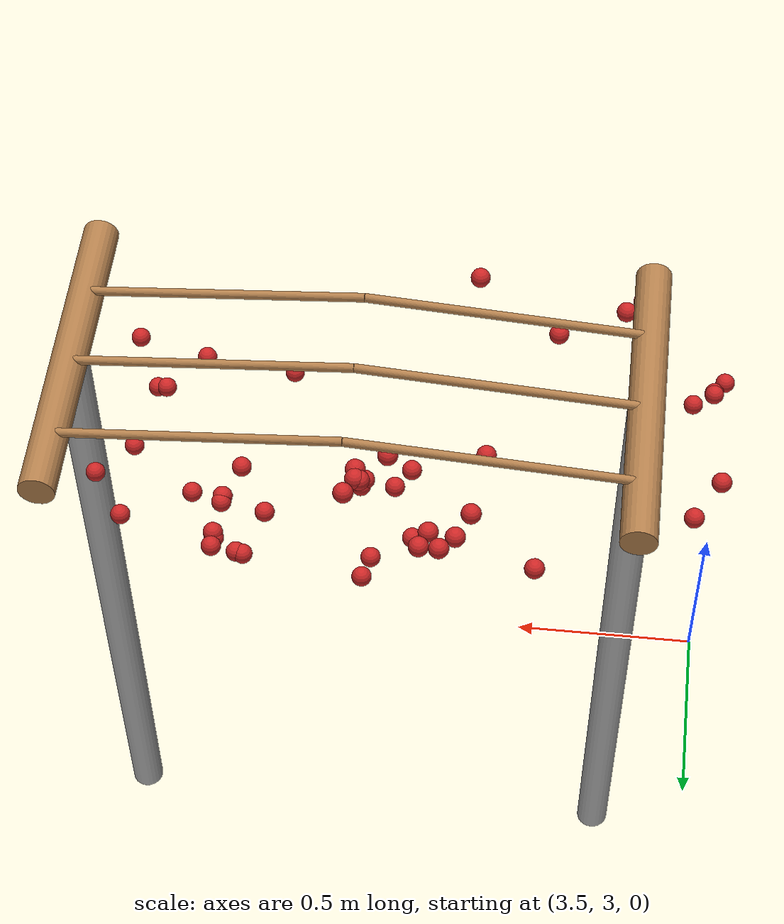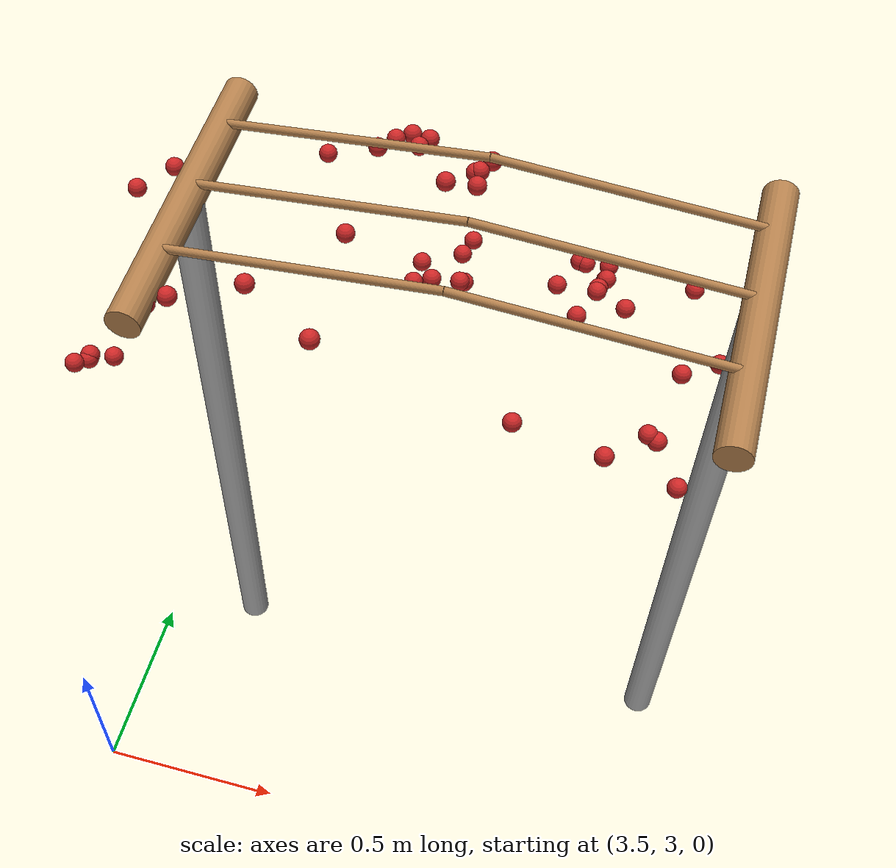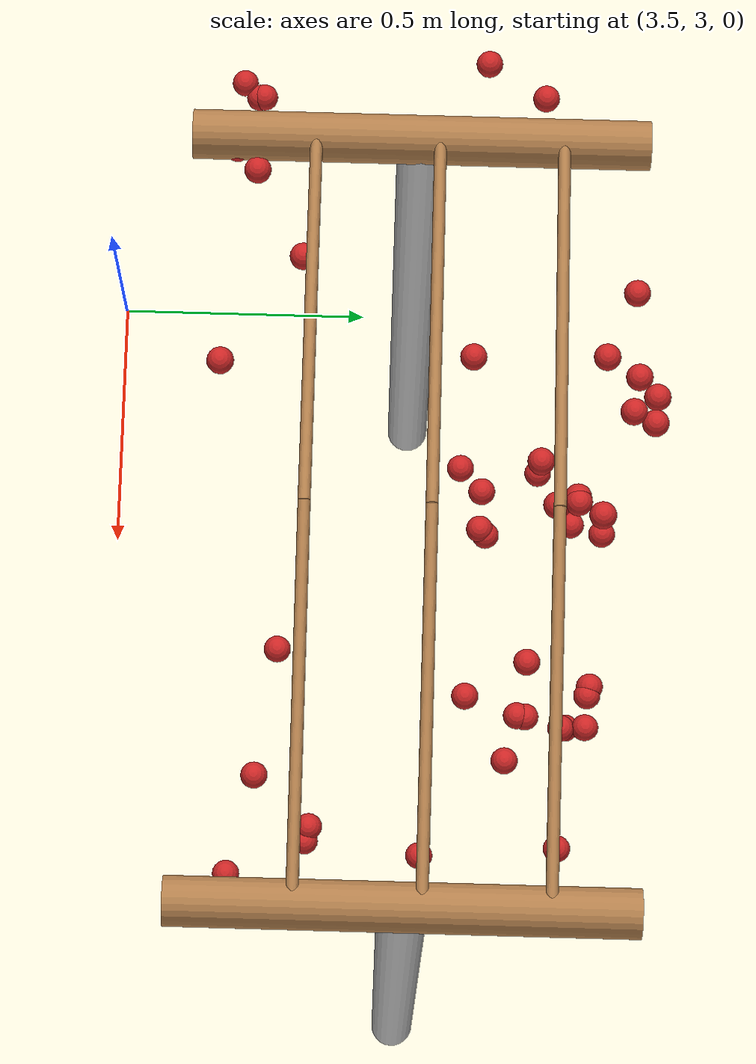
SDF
<sdf version="1.4">
 <model name="pergola">
  <include><name>tree_22</name><pose>3.75 3.6 0 0 0 0</pose><uri>model://tree_trunk</uri></include>
  <include><name>tree_28</name><pose>5.0 3.6 0 0 0 0</pose><uri>model://tree_trunk</uri></include>
  <link name="baseBranch_22">
   <pose>3.75 3.6 1.8 1.5707963267948966 0 0</pose>
   <collision name="collision">
    <geometry><cylinder><radius>0.04</radius><length>0.74</length></cylinder></geometry>
   </collision>
   <visual name="visual">
    <geometry><cylinder><radius>0.04</radius><length>0.74</length></cylinder></geometry>
    <material><script><name>Gazebo/WoodFloor</name></script></material>
   </visual>
   <inertial>
    <mass>10</mass>
    <inertia>
     <ixx>0.4603333333333333</ixx>
     <ixy>0.0</ixy>
     <ixz>0.0</ixz>
     <iyy>0.4603333333333333</iyy>
     <iyz>0.0</iyz>
     <izz>0.008</izz>
    </inertia>
   </inertial>
  </link>
  <link name="baseBranch_28">
   <pose>5.0 3.6 1.8 1.5707963267948966 0 0</pose>
   <collision name="collision">
    <geometry><cylinder><radius>0.04</radius><length>0.74</length></cylinder></geometry>
   </collision>
   <visual name="visual">
    <geometry><cylinder><radius>0.04</radius><length>0.74</length></cylinder></geometry>
    <material><script><name>Gazebo/WoodFloor</name></script></material>
   </visual>
   <inertial>
    <mass>10</mass>
    <inertia>
     <ixx>0.4603333333333333</ixx>
     <ixy>0.0</ixy>
     <ixz>0.0</ixz>
     <iyy>0.4603333333333333</iyy>
     <iyz>0.0</iyz>
     <izz>0.008</izz>
    </inertia>
   </inertial>
  </link>
  <link name="vine_178">
   <pose>4.0625 3.43 1.85 0 1.4909663410826592 0</pose>
   <collision name="collision">
    <geometry><cylinder><radius>0.01</radius><length>0.6269968101992226</length></cylinder></geometry>
   </collision>
   <visual name="visual">
    <geometry><cylinder><radius>0.01</radius><length>0.6269968101992226</length></cylinder></geometry>
    <material><script><name>Gazebo/WoodFloor</name></script></material>
   </visual>
   <inertial>
    <mass>5</mass>
    <inertia>
     <ixx>0.1639270833333333</ixx>
     <ixy>0.0</ixy>
     <ixz>0.0</ixz>
     <iyy>0.1639270833333333</iyy>
     <iyz>0.0</iyz>
     <izz>0.00025</izz>
    </inertia>
   </inertial>
  </link>
  <link name="vine_179">
   <pose>4.6875 3.43 1.85 0 -1.4909663410826592 0</pose>
   <collision name="collision">
    <geometry><cylinder><radius>0.01</radius><length>0.6269968101992226</length></cylinder></geometry>
   </collision>
   <visual name="visual">
    <geometry><cylinder><radius>0.01</radius><length>0.6269968101992226</length></cylinder></geometry>
    <material><script><name>Gazebo/WoodFloor</name></script></material>
   </visual>
   <inertial>
    <mass>5</mass>
    <inertia>
     <ixx>0.1639270833333333</ixx>
     <ixy>0.0</ixy>
     <ixz>0.0</ixz>
     <iyy>0.1639270833333333</iyy>
     <iyz>0.0</iyz>
     <izz>0.00025</izz>
    </inertia>
   </inertial>
  </link>
  <link name="vine_180">
   <pose>4.0625 3.63 1.85 0 1.4909663410826592 0</pose>
   <collision name="collision">
    <geometry><cylinder><radius>0.01</radius><length>0.6269968101992226</length></cylinder></geometry>
   </collision>
   <visual name="visual">
    <geometry><cylinder><radius>0.01</radius><length>0.6269968101992226</length></cylinder></geometry>
    <material><script><name>Gazebo/WoodFloor</name></script></material>
   </visual>
   <inertial>
    <mass>5</mass>
    <inertia>
     <ixx>0.1639270833333333</ixx>
     <ixy>0.0</ixy>
     <ixz>0.0</ixz>
     <iyy>0.1639270833333333</iyy>
     <iyz>0.0</iyz>
     <izz>0.00025</izz>
    </inertia>
   </inertial>
  </link>
  <link name="vine_181">
   <pose>4.6875 3.63 1.85 0 -1.4909663410826592 0</pose>
   <collision name="collision">
    <geometry><cylinder><radius>0.01</radius><length>0.6269968101992226</length></cylinder></geometry>
   </collision>
   <visual name="visual">
    <geometry><cylinder><radius>0.01</radius><length>0.6269968101992226</length></cylinder></geometry>
    <material><script><name>Gazebo/WoodFloor</name></script></material>
   </visual>
   <inertial>
    <mass>5</mass>
    <inertia>
     <ixx>0.1639270833333333</ixx>
     <ixy>0.0</ixy>
     <ixz>0.0</ixz>
     <iyy>0.1639270833333333</iyy>
     <iyz>0.0</iyz>
     <izz>0.00025</izz>
    </inertia>
   </inertial>
  </link>
  <link name="vine_182">
   <pose>4.0625 3.83 1.85 0 1.4909663410826592 0</pose>
   <collision name="collision">
    <geometry><cylinder><radius>0.01</radius><length>0.6269968101992226</length></cylinder></geometry>
   </collision>
   <visual name="visual">
    <geometry><cylinder><radius>0.01</radius><length>0.6269968101992226</length></cylinder></geometry>
    <material><script><name>Gazebo/WoodFloor</name></script></material>
   </visual>
   <inertial>
    <mass>5</mass>
    <inertia>
     <ixx>0.1639270833333333</ixx>
     <ixy>0.0</ixy>
     <ixz>0.0</ixz>
     <iyy>0.1639270833333333</iyy>
     <iyz>0.0</iyz>
     <izz>0.00025</izz>
    </inertia>
   </inertial>
  </link>
  <link name="vine_183">
   <pose>4.6875 3.83 1.85 0 -1.4909663410826592 0</pose>
   <collision name="collision">
    <geometry><cylinder><radius>0.01</radius><length>0.6269968101992226</length></cylinder></geometry>
   </collision>
   <visual name="visual">
    <geometry><cylinder><radius>0.01</radius><length>0.6269968101992226</length></cylinder></geometry>
    <material><script><name>Gazebo/WoodFloor</name></script></material>
   </visual>
   <inertial>
    <mass>5</mass>
    <inertia>
     <ixx>0.1639270833333333</ixx>
     <ixy>0.0</ixy>
     <ixz>0.0</ixz>
     <iyy>0.1639270833333333</iyy>
     <iyz>0.0</iyz>
     <izz>0.00025</izz>
    </inertia>
   </inertial>
  </link>
  <link name="fruit_35">
   <pose>3.5748689175744865 3.7105170724761267 1.6900106079071502 0 0 0</pose>
   <collision name="fruit_collision_35"><geometry><sphere><radius>0.022</radius></sphere></geometry></collision>
   <visual name="visual">
    <geometry><sphere><radius>0.022</radius></sphere></geometry>
    <material><script><name>Gazebo/Red</name></script></material>
   </visual>
   <inertial>
    <mass>0.05</mass>
    <inertia>
     <ixx>9.679999999999999e-06</ixx>
     <ixy>0.0</ixy>
     <ixz>0.0</ixz>
     <iyy>9.679999999999999e-06</iyy>
     <iyz>0.0</iyz>
     <izz>9.679999999999999e-06</izz>
    </inertia>
   </inertial>
   <sensor name="fruit_contact_35" type="contact">
    <plugin name="contact_plugin_35" filename="libcontact_plugin.so"/>
    <contact><collision>fruit_collision_35</collision><topic>fruit_contact_topic_35</topic></contact>
   </sensor>
  </link>
  <link name="fruit_97">
   <pose>4.231874274692161 3.809100633271392 1.529693802987201 0 0 0</pose>
   <collision name="fruit_collision_97"><geometry><sphere><radius>0.022</radius></sphere></geometry></collision>
   <visual name="visual">
    <geometry><sphere><radius>0.022</radius></sphere></geometry>
    <material><script><name>Gazebo/Red</name></script></material>
   </visual>
   <inertial>
    <mass>0.05</mass>
    <inertia>
     <ixx>9.679999999999999e-06</ixx>
     <ixy>0.0</ixy>
     <ixz>0.0</ixz>
     <iyy>9.679999999999999e-06</iyy>
     <iyz>0.0</iyz>
     <izz>9.679999999999999e-06</izz>
    </inertia>
   </inertial>
   <sensor name="fruit_contact_97" type="contact">
    <plugin name="contact_plugin_97" filename="libcontact_plugin.so"/>
    <contact><collision>fruit_collision_97</collision><topic>fruit_contact_topic_97</topic></contact>
   </sensor>
  </link>
  <link name="fruit_104">
   <pose>4.546819361317729 3.386859500426602 1.5518024783931244 0 0 0</pose>
   <collision name="fruit_collision_104"><geometry><sphere><radius>0.022</radius></sphere></geometry></collision>
   <visual name="visual">
    <geometry><sphere><radius>0.022</radius></sphere></geometry>
    <material><script><name>Gazebo/Red</name></script></material>
   </visual>
   <inertial>
    <mass>0.05</mass>
    <inertia>
     <ixx>9.679999999999999e-06</ixx>
     <ixy>0.0</ixy>
     <ixz>0.0</ixz>
     <iyy>9.679999999999999e-06</iyy>
     <iyz>0.0</iyz>
     <izz>9.679999999999999e-06</izz>
    </inertia>
   </inertial>
   <sensor name="fruit_contact_104" type="contact">
    <plugin name="contact_plugin_104" filename="libcontact_plugin.so"/>
    <contact><collision>fruit_collision_104</collision><topic>fruit_contact_topic_104</topic></contact>
   </sensor>
  </link>
  <link name="fruit_106">
   <pose>4.868263281738731 3.8482461166552437 1.578128206951417 0 0 0</pose>
   <collision name="fruit_collision_106"><geometry><sphere><radius>0.022</radius></sphere></geometry></collision>
   <visual name="visual">
    <geometry><sphere><radius>0.022</radius></sphere></geometry>
    <material><script><name>Gazebo/Red</name></script></material>
   </visual>
   <inertial>
    <mass>0.05</mass>
    <inertia>
     <ixx>9.679999999999999e-06</ixx>
     <ixy>0.0</ixy>
     <ixz>0.0</ixz>
     <iyy>9.679999999999999e-06</iyy>
     <iyz>0.0</iyz>
     <izz>9.679999999999999e-06</izz>
    </inertia>
   </inertial>
   <sensor name="fruit_contact_106" type="contact">
    <plugin name="contact_plugin_106" filename="libcontact_plugin.so"/>
    <contact><collision>fruit_collision_106</collision><topic>fruit_contact_topic_106</topic></contact>
   </sensor>
  </link>
  <link name="fruit_129">
   <pose>4.284090774388557 3.8024910085986137 1.8062980061446468 0 0 0</pose>
   <collision name="fruit_collision_129"><geometry><sphere><radius>0.022</radius></sphere></geometry></collision>
   <visual name="visual">
    <geometry><sphere><radius>0.022</radius></sphere></geometry>
    <material><script><name>Gazebo/Red</name></script></material>
   </visual>
   <inertial>
    <mass>0.05</mass>
    <inertia>
     <ixx>9.679999999999999e-06</ixx>
     <ixy>0.0</ixy>
     <ixz>0.0</ixz>
     <iyy>9.679999999999999e-06</iyy>
     <iyz>0.0</iyz>
     <izz>9.679999999999999e-06</izz>
    </inertia>
   </inertial>
   <sensor name="fruit_contact_129" type="contact">
    <plugin name="contact_plugin_129" filename="libcontact_plugin.so"/>
    <contact><collision>fruit_collision_129</collision><topic>fruit_contact_topic_129</topic></contact>
   </sensor>
  </link>
  <link name="fruit_132">
   <pose>4.245720434496257 3.678982592342026 1.6020096510745614 0 0 0</pose>
   <collision name="fruit_collision_132"><geometry><sphere><radius>0.022</radius></sphere></geometry></collision>
   <visual name="visual">
    <geometry><sphere><radius>0.022</radius></sphere></geometry>
    <material><script><name>Gazebo/Red</name></script></material>
   </visual>
   <inertial>
    <mass>0.05</mass>
    <inertia>
     <ixx>9.679999999999999e-06</ixx>
     <ixy>0.0</ixy>
     <ixz>0.0</ixz>
     <iyy>9.679999999999999e-06</iyy>
     <iyz>0.0</iyz>
     <izz>9.679999999999999e-06</izz>
    </inertia>
   </inertial>
   <sensor name="fruit_contact_132" type="contact">
    <plugin name="contact_plugin_132" filename="libcontact_plugin.so"/>
    <contact><collision>fruit_collision_132</collision><topic>fruit_contact_topic_132</topic></contact>
   </sensor>
  </link>
  <link name="fruit_139">
   <pose>4.098227333961895 3.9076688972569347 1.768676064199125 0 0 0</pose>
   <collision name="fruit_collision_139"><geometry><sphere><radius>0.022</radius></sphere></geometry></collision>
   <visual name="visual">
    <geometry><sphere><radius>0.022</radius></sphere></geometry>
    <material><script><name>Gazebo/Red</name></script></material>
   </visual>
   <inertial>
    <mass>0.05</mass>
    <inertia>
     <ixx>9.679999999999999e-06</ixx>
     <ixy>0.0</ixy>
     <ixz>0.0</ixz>
     <iyy>9.679999999999999e-06</iyy>
     <iyz>0.0</iyz>
     <izz>9.679999999999999e-06</izz>
    </inertia>
   </inertial>
   <sensor name="fruit_contact_139" type="contact">
    <plugin name="contact_plugin_139" filename="libcontact_plugin.so"/>
    <contact><collision>fruit_collision_139</collision><topic>fruit_contact_topic_139</topic></contact>
   </sensor>
  </link>
  <link name="fruit_168">
   <pose>4.082668922300593 3.6945760030005994 1.6968273236797013 0 0 0</pose>
   <collision name="fruit_collision_168"><geometry><sphere><radius>0.022</radius></sphere></geometry></collision>
   <visual name="visual">
    <geometry><sphere><radius>0.022</radius></sphere></geometry>
    <material><script><name>Gazebo/Red</name></script></material>
   </visual>
   <inertial>
    <mass>0.05</mass>
    <inertia>
     <ixx>9.679999999999999e-06</ixx>
     <ixy>0.0</ixy>
     <ixz>0.0</ixz>
     <iyy>9.679999999999999e-06</iyy>
     <iyz>0.0</iyz>
     <izz>9.679999999999999e-06</izz>
    </inertia>
   </inertial>
   <sensor name="fruit_contact_168" type="contact">
    <plugin name="contact_plugin_168" filename="libcontact_plugin.so"/>
    <contact><collision>fruit_collision_168</collision><topic>fruit_contact_topic_168</topic></contact>
   </sensor>
  </link>
  <link name="fruit_170">
   <pose>3.9579905166438847 3.961595972147786 1.6675570005157485 0 0 0</pose>
   <collision name="fruit_collision_170"><geometry><sphere><radius>0.022</radius></sphere></geometry></collision>
   <visual name="visual">
    <geometry><sphere><radius>0.022</radius></sphere></geometry>
    <material><script><name>Gazebo/Red</name></script></material>
   </visual>
   <inertial>
    <mass>0.05</mass>
    <inertia>
     <ixx>9.679999999999999e-06</ixx>
     <ixy>0.0</ixy>
     <ixz>0.0</ixz>
     <iyy>9.679999999999999e-06</iyy>
     <iyz>0.0</iyz>
     <izz>9.679999999999999e-06</izz>
    </inertia>
   </inertial>
   <sensor name="fruit_contact_170" type="contact">
    <plugin name="contact_plugin_170" filename="libcontact_plugin.so"/>
    <contact><collision>fruit_collision_170</collision><topic>fruit_contact_topic_170</topic></contact>
   </sensor>
  </link>
  <link name="fruit_203">
   <pose>4.879776272059085 3.62721626120525 1.5402229952425979 0 0 0</pose>
   <collision name="fruit_collision_203"><geometry><sphere><radius>0.022</radius></sphere></geometry></collision>
   <visual name="visual">
    <geometry><sphere><radius>0.022</radius></sphere></geometry>
    <material><script><name>Gazebo/Red</name></script></material>
   </visual>
   <inertial>
    <mass>0.05</mass>
    <inertia>
     <ixx>9.679999999999999e-06</ixx>
     <ixy>0.0</ixy>
     <ixz>0.0</ixz>
     <iyy>9.679999999999999e-06</iyy>
     <iyz>0.0</iyz>
     <izz>9.679999999999999e-06</izz>
    </inertia>
   </inertial>
   <sensor name="fruit_contact_203" type="contact">
    <plugin name="contact_plugin_203" filename="libcontact_plugin.so"/>
    <contact><collision>fruit_collision_203</collision><topic>fruit_contact_topic_203</topic></contact>
   </sensor>
  </link>
  <link name="fruit_204">
   <pose>4.558877109567327 3.7956385424276053 1.5599686924124236 0 0 0</pose>
   <collision name="fruit_collision_204"><geometry><sphere><radius>0.022</radius></sphere></geometry></collision>
   <visual name="visual">
    <geometry><sphere><radius>0.022</radius></sphere></geometry>
    <material><script><name>Gazebo/Red</name></script></material>
   </visual>
   <inertial>
    <mass>0.05</mass>
    <inertia>
     <ixx>9.679999999999999e-06</ixx>
     <ixy>0.0</ixy>
     <ixz>0.0</ixz>
     <iyy>9.679999999999999e-06</iyy>
     <iyz>0.0</iyz>
     <izz>9.679999999999999e-06</izz>
    </inertia>
   </inertial>
   <sensor name="fruit_contact_204" type="contact">
    <plugin name="contact_plugin_204" filename="libcontact_plugin.so"/>
    <contact><collision>fruit_collision_204</collision><topic>fruit_contact_topic_204</topic></contact>
   </sensor>
  </link>
  <link name="fruit_258">
   <pose>4.62293885806369 3.694793148573853 1.5834883592967632 0 0 0</pose>
   <collision name="fruit_collision_258"><geometry><sphere><radius>0.022</radius></sphere></geometry></collision>
   <visual name="visual">
    <geometry><sphere><radius>0.022</radius></sphere></geometry>
    <material><script><name>Gazebo/Red</name></script></material>
   </visual>
   <inertial>
    <mass>0.05</mass>
    <inertia>
     <ixx>9.679999999999999e-06</ixx>
     <ixy>0.0</ixy>
     <ixz>0.0</ixz>
     <iyy>9.679999999999999e-06</iyy>
     <iyz>0.0</iyz>
     <izz>9.679999999999999e-06</izz>
    </inertia>
   </inertial>
   <sensor name="fruit_contact_258" type="contact">
    <plugin name="contact_plugin_258" filename="libcontact_plugin.so"/>
    <contact><collision>fruit_collision_258</collision><topic>fruit_contact_topic_258</topic></contact>
   </sensor>
  </link>
  <link name="fruit_302">
   <pose>4.75605934517887 3.3555164486346682 1.54551259226274 0 0 0</pose>
   <collision name="fruit_collision_302"><geometry><sphere><radius>0.022</radius></sphere></geometry></collision>
   <visual name="visual">
    <geometry><sphere><radius>0.022</radius></sphere></geometry>
    <material><script><name>Gazebo/Red</name></script></material>
   </visual>
   <inertial>
    <mass>0.05</mass>
    <inertia>
     <ixx>9.679999999999999e-06</ixx>
     <ixy>0.0</ixy>
     <ixz>0.0</ixz>
     <iyy>9.679999999999999e-06</iyy>
     <iyz>0.0</iyz>
     <izz>9.679999999999999e-06</izz>
    </inertia>
   </inertial>
   <sensor name="fruit_contact_302" type="contact">
    <plugin name="contact_plugin_302" filename="libcontact_plugin.so"/>
    <contact><collision>fruit_collision_302</collision><topic>fruit_contact_topic_302</topic></contact>
   </sensor>
  </link>
  <link name="fruit_316">
   <pose>3.5604761007250327 3.2998017532938273 1.5334318745827689 0 0 0</pose>
   <collision name="fruit_collision_316"><geometry><sphere><radius>0.022</radius></sphere></geometry></collision>
   <visual name="visual">
    <geometry><sphere><radius>0.022</radius></sphere></geometry>
    <material><script><name>Gazebo/Red</name></script></material>
   </visual>
   <inertial>
    <mass>0.05</mass>
    <inertia>
     <ixx>9.679999999999999e-06</ixx>
     <ixy>0.0</ixy>
     <ixz>0.0</ixz>
     <iyy>9.679999999999999e-06</iyy>
     <iyz>0.0</iyz>
     <izz>9.679999999999999e-06</izz>
    </inertia>
   </inertial>
   <sensor name="fruit_contact_316" type="contact">
    <plugin name="contact_plugin_316" filename="libcontact_plugin.so"/>
    <contact><collision>fruit_collision_316</collision><topic>fruit_contact_topic_316</topic></contact>
   </sensor>
  </link>
  <link name="fruit_331">
   <pose>3.9489657054620104 3.4141746376161572 1.7883942065135867 0 0 0</pose>
   <collision name="fruit_collision_331"><geometry><sphere><radius>0.022</radius></sphere></geometry></collision>
   <visual name="visual">
    <geometry><sphere><radius>0.022</radius></sphere></geometry>
    <material><script><name>Gazebo/Red</name></script></material>
   </visual>
   <inertial>
    <mass>0.05</mass>
    <inertia>
     <ixx>9.679999999999999e-06</ixx>
     <ixy>0.0</ixy>
     <ixz>0.0</ixz>
     <iyy>9.679999999999999e-06</iyy>
     <iyz>0.0</iyz>
     <izz>9.679999999999999e-06</izz>
    </inertia>
   </inertial>
   <sensor name="fruit_contact_331" type="contact">
    <plugin name="contact_plugin_331" filename="libcontact_plugin.so"/>
    <contact><collision>fruit_collision_331</collision><topic>fruit_contact_topic_331</topic></contact>
   </sensor>
  </link>
  <link name="fruit_362">
   <pose>3.769880544892203 3.302757046424911 1.7927749462828617 0 0 0</pose>
   <collision name="fruit_collision_362"><geometry><sphere><radius>0.022</radius></sphere></geometry></collision>
   <visual name="visual">
    <geometry><sphere><radius>0.022</radius></sphere></geometry>
    <material><script><name>Gazebo/Red</name></script></material>
   </visual>
   <inertial>
    <mass>0.05</mass>
    <inertia>
     <ixx>9.679999999999999e-06</ixx>
     <ixy>0.0</ixy>
     <ixz>0.0</ixz>
     <iyy>9.679999999999999e-06</iyy>
     <iyz>0.0</iyz>
     <izz>9.679999999999999e-06</izz>
    </inertia>
   </inertial>
   <sensor name="fruit_contact_362" type="contact">
    <plugin name="contact_plugin_362" filename="libcontact_plugin.so"/>
    <contact><collision>fruit_collision_362</collision><topic>fruit_contact_topic_362</topic></contact>
   </sensor>
  </link>
  <link name="fruit_365">
   <pose>4.36679332977774 3.902293177713709 1.7965259567467637 0 0 0</pose>
   <collision name="fruit_collision_365"><geometry><sphere><radius>0.022</radius></sphere></geometry></collision>
   <visual name="visual">
    <geometry><sphere><radius>0.022</radius></sphere></geometry>
    <material><script><name>Gazebo/Red</name></script></material>
   </visual>
   <inertial>
    <mass>0.05</mass>
    <inertia>
     <ixx>9.679999999999999e-06</ixx>
     <ixy>0.0</ixy>
     <ixz>0.0</ixz>
     <iyy>9.679999999999999e-06</iyy>
     <iyz>0.0</iyz>
     <izz>9.679999999999999e-06</izz>
    </inertia>
   </inertial>
   <sensor name="fruit_contact_365" type="contact">
    <plugin name="contact_plugin_365" filename="libcontact_plugin.so"/>
    <contact><collision>fruit_collision_365</collision><topic>fruit_contact_topic_365</topic></contact>
   </sensor>
  </link>
  <link name="fruit_373">
   <pose>4.126391052832922 3.960638991959009 1.7547046921449758 0 0 0</pose>
   <collision name="fruit_collision_373"><geometry><sphere><radius>0.022</radius></sphere></geometry></collision>
   <visual name="visual">
    <geometry><sphere><radius>0.022</radius></sphere></geometry>
    <material><script><name>Gazebo/Red</name></script></material>
   </visual>
   <inertial>
    <mass>0.05</mass>
    <inertia>
     <ixx>9.679999999999999e-06</ixx>
     <ixy>0.0</ixy>
     <ixz>0.0</ixz>
     <iyy>9.679999999999999e-06</iyy>
     <iyz>0.0</iyz>
     <izz>9.679999999999999e-06</izz>
    </inertia>
   </inertial>
   <sensor name="fruit_contact_373" type="contact">
    <plugin name="contact_plugin_373" filename="libcontact_plugin.so"/>
    <contact><collision>fruit_collision_373</collision><topic>fruit_contact_topic_373</topic></contact>
   </sensor>
  </link>
  <link name="fruit_395">
   <pose>3.8051513727245543 3.3360082974673997 1.790297711374892 0 0 0</pose>
   <collision name="fruit_collision_395"><geometry><sphere><radius>0.022</radius></sphere></geometry></collision>
   <visual name="visual">
    <geometry><sphere><radius>0.022</radius></sphere></geometry>
    <material><script><name>Gazebo/Red</name></script></material>
   </visual>
   <inertial>
    <mass>0.05</mass>
    <inertia>
     <ixx>9.679999999999999e-06</ixx>
     <ixy>0.0</ixy>
     <ixz>0.0</ixz>
     <iyy>9.679999999999999e-06</iyy>
     <iyz>0.0</iyz>
     <izz>9.679999999999999e-06</izz>
    </inertia>
   </inertial>
   <sensor name="fruit_contact_395" type="contact">
    <plugin name="contact_plugin_395" filename="libcontact_plugin.so"/>
    <contact><collision>fruit_collision_395</collision><topic>fruit_contact_topic_395</topic></contact>
   </sensor>
  </link>
  <link name="fruit_401">
   <pose>4.279531160146799 3.715291517946457 1.583812193911339 0 0 0</pose>
   <collision name="fruit_collision_401"><geometry><sphere><radius>0.022</radius></sphere></geometry></collision>
   <visual name="visual">
    <geometry><sphere><radius>0.022</radius></sphere></geometry>
    <material><script><name>Gazebo/Red</name></script></material>
   </visual>
   <inertial>
    <mass>0.05</mass>
    <inertia>
     <ixx>9.679999999999999e-06</ixx>
     <ixy>0.0</ixy>
     <ixz>0.0</ixz>
     <iyy>9.679999999999999e-06</iyy>
     <iyz>0.0</iyz>
     <izz>9.679999999999999e-06</izz>
    </inertia>
   </inertial>
   <sensor name="fruit_contact_401" type="contact">
    <plugin name="contact_plugin_401" filename="libcontact_plugin.so"/>
    <contact><collision>fruit_collision_401</collision><topic>fruit_contact_topic_401</topic></contact>
   </sensor>
  </link>
  <link name="fruit_413">
   <pose>4.8587760467344765 3.4404804019710657 1.5250798368622709 0 0 0</pose>
   <collision name="fruit_collision_413"><geometry><sphere><radius>0.022</radius></sphere></geometry></collision>
   <visual name="visual">
    <geometry><sphere><radius>0.022</radius></sphere></geometry>
    <material><script><name>Gazebo/Red</name></script></material>
   </visual>
   <inertial>
    <mass>0.05</mass>
    <inertia>
     <ixx>9.679999999999999e-06</ixx>
     <ixy>0.0</ixy>
     <ixz>0.0</ixz>
     <iyy>9.679999999999999e-06</iyy>
     <iyz>0.0</iyz>
     <izz>9.679999999999999e-06</izz>
    </inertia>
   </inertial>
   <sensor name="fruit_contact_413" type="contact">
    <plugin name="contact_plugin_413" filename="libcontact_plugin.so"/>
    <contact><collision>fruit_collision_413</collision><topic>fruit_contact_topic_413</topic></contact>
   </sensor>
  </link>
  <link name="fruit_418">
   <pose>4.183466714984372 3.95261562970386 1.7528999827830851 0 0 0</pose>
   <collision name="fruit_collision_418"><geometry><sphere><radius>0.022</radius></sphere></geometry></collision>
   <visual name="visual">
    <geometry><sphere><radius>0.022</radius></sphere></geometry>
    <material><script><name>Gazebo/Red</name></script></material>
   </visual>
   <inertial>
    <mass>0.05</mass>
    <inertia>
     <ixx>9.679999999999999e-06</ixx>
     <ixy>0.0</ixy>
     <ixz>0.0</ixz>
     <iyy>9.679999999999999e-06</iyy>
     <iyz>0.0</iyz>
     <izz>9.679999999999999e-06</izz>
    </inertia>
   </inertial>
   <sensor name="fruit_contact_418" type="contact">
    <plugin name="contact_plugin_418" filename="libcontact_plugin.so"/>
    <contact><collision>fruit_collision_418</collision><topic>fruit_contact_topic_418</topic></contact>
   </sensor>
  </link>
  <link name="fruit_427">
   <pose>3.583260959388307 3.3247861494256195 1.5259622010871055 0 0 0</pose>
   <collision name="fruit_collision_427"><geometry><sphere><radius>0.022</radius></sphere></geometry></collision>
   <visual name="visual">
    <geometry><sphere><radius>0.022</radius></sphere></geometry>
    <material><script><name>Gazebo/Red</name></script></material>
   </visual>
   <inertial>
    <mass>0.05</mass>
    <inertia>
     <ixx>9.679999999999999e-06</ixx>
     <ixy>0.0</ixy>
     <ixz>0.0</ixz>
     <iyy>9.679999999999999e-06</iyy>
     <iyz>0.0</iyz>
     <izz>9.679999999999999e-06</izz>
    </inertia>
   </inertial>
   <sensor name="fruit_contact_427" type="contact">
    <plugin name="contact_plugin_427" filename="libcontact_plugin.so"/>
    <contact><collision>fruit_collision_427</collision><topic>fruit_contact_topic_427</topic></contact>
   </sensor>
  </link>
  <link name="fruit_454">
   <pose>4.353846508431242 3.7224356202642435 1.5863559753095726 0 0 0</pose>
   <collision name="fruit_collision_454"><geometry><sphere><radius>0.022</radius></sphere></geometry></collision>
   <visual name="visual">
    <geometry><sphere><radius>0.022</radius></sphere></geometry>
    <material><script><name>Gazebo/Red</name></script></material>
   </visual>
   <inertial>
    <mass>0.05</mass>
    <inertia>
     <ixx>9.679999999999999e-06</ixx>
     <ixy>0.0</ixy>
     <ixz>0.0</ixz>
     <iyy>9.679999999999999e-06</iyy>
     <iyz>0.0</iyz>
     <izz>9.679999999999999e-06</izz>
    </inertia>
   </inertial>
   <sensor name="fruit_contact_454" type="contact">
    <plugin name="contact_plugin_454" filename="libcontact_plugin.so"/>
    <contact><collision>fruit_collision_454</collision><topic>fruit_contact_topic_454</topic></contact>
   </sensor>
  </link>
  <link name="fruit_456">
   <pose>4.72436006373151 3.761644081000211 1.5649194498689392 0 0 0</pose>
   <collision name="fruit_collision_456"><geometry><sphere><radius>0.022</radius></sphere></geometry></collision>
   <visual name="visual">
    <geometry><sphere><radius>0.022</radius></sphere></geometry>
    <material><script><name>Gazebo/Red</name></script></material>
   </visual>
   <inertial>
    <mass>0.05</mass>
    <inertia>
     <ixx>9.679999999999999e-06</ixx>
     <ixy>0.0</ixy>
     <ixz>0.0</ixz>
     <iyy>9.679999999999999e-06</iyy>
     <iyz>0.0</iyz>
     <izz>9.679999999999999e-06</izz>
    </inertia>
   </inertial>
   <sensor name="fruit_contact_456" type="contact">
    <plugin name="contact_plugin_456" filename="libcontact_plugin.so"/>
    <contact><collision>fruit_collision_456</collision><topic>fruit_contact_topic_456</topic></contact>
   </sensor>
  </link>
  <link name="fruit_458">
   <pose>4.918941378584235 3.3154454801909035 1.5478534993740476 0 0 0</pose>
   <collision name="fruit_collision_458"><geometry><sphere><radius>0.022</radius></sphere></geometry></collision>
   <visual name="visual">
    <geometry><sphere><radius>0.022</radius></sphere></geometry>
    <material><script><name>Gazebo/Red</name></script></material>
   </visual>
   <inertial>
    <mass>0.05</mass>
    <inertia>
     <ixx>9.679999999999999e-06</ixx>
     <ixy>0.0</ixy>
     <ixz>0.0</ixz>
     <iyy>9.679999999999999e-06</iyy>
     <iyz>0.0</iyz>
     <izz>9.679999999999999e-06</izz>
    </inertia>
   </inertial>
   <sensor name="fruit_contact_458" type="contact">
    <plugin name="contact_plugin_458" filename="libcontact_plugin.so"/>
    <contact><collision>fruit_collision_458</collision><topic>fruit_contact_topic_458</topic></contact>
   </sensor>
  </link>
  <link name="fruit_478">
   <pose>4.958529035479437 3.6956462804960184 1.5196953972530096 0 0 0</pose>
   <collision name="fruit_collision_478"><geometry><sphere><radius>0.022</radius></sphere></geometry></collision>
   <visual name="visual">
    <geometry><sphere><radius>0.022</radius></sphere></geometry>
    <material><script><name>Gazebo/Red</name></script></material>
   </visual>
   <inertial>
    <mass>0.05</mass>
    <inertia>
     <ixx>9.679999999999999e-06</ixx>
     <ixy>0.0</ixy>
     <ixz>0.0</ixz>
     <iyy>9.679999999999999e-06</iyy>
     <iyz>0.0</iyz>
     <izz>9.679999999999999e-06</izz>
    </inertia>
   </inertial>
   <sensor name="fruit_contact_478" type="contact">
    <plugin name="contact_plugin_478" filename="libcontact_plugin.so"/>
    <contact><collision>fruit_collision_478</collision><topic>fruit_contact_topic_478</topic></contact>
   </sensor>
  </link>
  <link name="fruit_497">
   <pose>4.665296140220267 3.853557765870272 1.5484421349869795 0 0 0</pose>
   <collision name="fruit_collision_497"><geometry><sphere><radius>0.022</radius></sphere></geometry></collision>
   <visual name="visual">
    <geometry><sphere><radius>0.022</radius></sphere></geometry>
    <material><script><name>Gazebo/Red</name></script></material>
   </visual>
   <inertial>
    <mass>0.05</mass>
    <inertia>
     <ixx>9.679999999999999e-06</ixx>
     <ixy>0.0</ixy>
     <ixz>0.0</ixz>
     <iyy>9.679999999999999e-06</iyy>
     <iyz>0.0</iyz>
     <izz>9.679999999999999e-06</izz>
    </inertia>
   </inertial>
   <sensor name="fruit_contact_497" type="contact">
    <plugin name="contact_plugin_497" filename="libcontact_plugin.so"/>
    <contact><collision>fruit_collision_497</collision><topic>fruit_contact_topic_497</topic></contact>
   </sensor>
  </link>
  <link name="fruit_504">
   <pose>3.6297596878487086 3.3551227578380116 1.5136768161524332 0 0 0</pose>
   <collision name="fruit_collision_504"><geometry><sphere><radius>0.022</radius></sphere></geometry></collision>
   <visual name="visual">
    <geometry><sphere><radius>0.022</radius></sphere></geometry>
    <material><script><name>Gazebo/Red</name></script></material>
   </visual>
   <inertial>
    <mass>0.05</mass>
    <inertia>
     <ixx>9.679999999999999e-06</ixx>
     <ixy>0.0</ixy>
     <ixz>0.0</ixz>
     <iyy>9.679999999999999e-06</iyy>
     <iyz>0.0</iyz>
     <izz>9.679999999999999e-06</izz>
    </inertia>
   </inertial>
   <sensor name="fruit_contact_504" type="contact">
    <plugin name="contact_plugin_504" filename="libcontact_plugin.so"/>
    <contact><collision>fruit_collision_504</collision><topic>fruit_contact_topic_504</topic></contact>
   </sensor>
  </link>
  <link name="fruit_521">
   <pose>4.3309205889379205 3.917580633415588 1.5208564206758763 0 0 0</pose>
   <collision name="fruit_collision_521"><geometry><sphere><radius>0.022</radius></sphere></geometry></collision>
   <visual name="visual">
    <geometry><sphere><radius>0.022</radius></sphere></geometry>
    <material><script><name>Gazebo/Red</name></script></material>
   </visual>
   <inertial>
    <mass>0.05</mass>
    <inertia>
     <ixx>9.679999999999999e-06</ixx>
     <ixy>0.0</ixy>
     <ixz>0.0</ixz>
     <iyy>9.679999999999999e-06</iyy>
     <iyz>0.0</iyz>
     <izz>9.679999999999999e-06</izz>
    </inertia>
   </inertial>
   <sensor name="fruit_contact_521" type="contact">
    <plugin name="contact_plugin_521" filename="libcontact_plugin.so"/>
    <contact><collision>fruit_collision_521</collision><topic>fruit_contact_topic_521</topic></contact>
   </sensor>
  </link>
  <link name="fruit_539">
   <pose>4.3462556411161115 3.712600354050756 1.5970548526479174 0 0 0</pose>
   <collision name="fruit_collision_539"><geometry><sphere><radius>0.022</radius></sphere></geometry></collision>
   <visual name="visual">
    <geometry><sphere><radius>0.022</radius></sphere></geometry>
    <material><script><name>Gazebo/Red</name></script></material>
   </visual>
   <inertial>
    <mass>0.05</mass>
    <inertia>
     <ixx>9.679999999999999e-06</ixx>
     <ixy>0.0</ixy>
     <ixz>0.0</ixz>
     <iyy>9.679999999999999e-06</iyy>
     <iyz>0.0</iyz>
     <izz>9.679999999999999e-06</izz>
    </inertia>
   </inertial>
   <sensor name="fruit_contact_539" type="contact">
    <plugin name="contact_plugin_539" filename="libcontact_plugin.so"/>
    <contact><collision>fruit_collision_539</collision><topic>fruit_contact_topic_539</topic></contact>
   </sensor>
  </link>
  <link name="fruit_546">
   <pose>4.662560912778587 3.8610393480050034 1.5385300540956321 0 0 0</pose>
   <collision name="fruit_collision_546"><geometry><sphere><radius>0.022</radius></sphere></geometry></collision>
   <visual name="visual">
    <geometry><sphere><radius>0.022</radius></sphere></geometry>
    <material><script><name>Gazebo/Red</name></script></material>
   </visual>
   <inertial>
    <mass>0.05</mass>
    <inertia>
     <ixx>9.679999999999999e-06</ixx>
     <ixy>0.0</ixy>
     <ixz>0.0</ixz>
     <iyy>9.679999999999999e-06</iyy>
     <iyz>0.0</iyz>
     <izz>9.679999999999999e-06</izz>
    </inertia>
   </inertial>
   <sensor name="fruit_contact_546" type="contact">
    <plugin name="contact_plugin_546" filename="libcontact_plugin.so"/>
    <contact><collision>fruit_collision_546</collision><topic>fruit_contact_topic_546</topic></contact>
   </sensor>
  </link>
  <link name="fruit_553">
   <pose>4.133680463140526 3.287707807777022 1.8116405838651797 0 0 0</pose>
   <collision name="fruit_collision_553"><geometry><sphere><radius>0.022</radius></sphere></geometry></collision>
   <visual name="visual">
    <geometry><sphere><radius>0.022</radius></sphere></geometry>
    <material><script><name>Gazebo/Red</name></script></material>
   </visual>
   <inertial>
    <mass>0.05</mass>
    <inertia>
     <ixx>9.679999999999999e-06</ixx>
     <ixy>0.0</ixy>
     <ixz>0.0</ixz>
     <iyy>9.679999999999999e-06</iyy>
     <iyz>0.0</iyz>
     <izz>9.679999999999999e-06</izz>
    </inertia>
   </inertial>
   <sensor name="fruit_contact_553" type="contact">
    <plugin name="contact_plugin_553" filename="libcontact_plugin.so"/>
    <contact><collision>fruit_collision_553</collision><topic>fruit_contact_topic_553</topic></contact>
   </sensor>
  </link>
  <link name="fruit_572">
   <pose>4.349841860399908 3.829697735743113 1.7855638369669455 0 0 0</pose>
   <collision name="fruit_collision_572"><geometry><sphere><radius>0.022</radius></sphere></geometry></collision>
   <visual name="visual">
    <geometry><sphere><radius>0.022</radius></sphere></geometry>
    <material><script><name>Gazebo/Red</name></script></material>
   </visual>
   <inertial>
    <mass>0.05</mass>
    <inertia>
     <ixx>9.679999999999999e-06</ixx>
     <ixy>0.0</ixy>
     <ixz>0.0</ixz>
     <iyy>9.679999999999999e-06</iyy>
     <iyz>0.0</iyz>
     <izz>9.679999999999999e-06</izz>
    </inertia>
   </inertial>
   <sensor name="fruit_contact_572" type="contact">
    <plugin name="contact_plugin_572" filename="libcontact_plugin.so"/>
    <contact><collision>fruit_collision_572</collision><topic>fruit_contact_topic_572</topic></contact>
   </sensor>
  </link>
  <link name="fruit_586">
   <pose>3.7619894452501996 3.2878773340031087 1.8067532555116002 0 0 0</pose>
   <collision name="fruit_collision_586"><geometry><sphere><radius>0.022</radius></sphere></geometry></collision>
   <visual name="visual">
    <geometry><sphere><radius>0.022</radius></sphere></geometry>
    <material><script><name>Gazebo/Red</name></script></material>
   </visual>
   <inertial>
    <mass>0.05</mass>
    <inertia>
     <ixx>9.679999999999999e-06</ixx>
     <ixy>0.0</ixy>
     <ixz>0.0</ixz>
     <iyy>9.679999999999999e-06</iyy>
     <iyz>0.0</iyz>
     <izz>9.679999999999999e-06</izz>
    </inertia>
   </inertial>
   <sensor name="fruit_contact_586" type="contact">
    <plugin name="contact_plugin_586" filename="libcontact_plugin.so"/>
    <contact><collision>fruit_collision_586</collision><topic>fruit_contact_topic_586</topic></contact>
   </sensor>
  </link>
  <link name="fruit_609">
   <pose>4.337599199503338 3.862670526692463 1.792010466305809 0 0 0</pose>
   <collision name="fruit_collision_609"><geometry><sphere><radius>0.022</radius></sphere></geometry></collision>
   <visual name="visual">
    <geometry><sphere><radius>0.022</radius></sphere></geometry>
    <material><script><name>Gazebo/Red</name></script></material>
   </visual>
   <inertial>
    <mass>0.05</mass>
    <inertia>
     <ixx>9.679999999999999e-06</ixx>
     <ixy>0.0</ixy>
     <ixz>0.0</ixz>
     <iyy>9.679999999999999e-06</iyy>
     <iyz>0.0</iyz>
     <izz>9.679999999999999e-06</izz>
    </inertia>
   </inertial>
   <sensor name="fruit_contact_609" type="contact">
    <plugin name="contact_plugin_609" filename="libcontact_plugin.so"/>
    <contact><collision>fruit_collision_609</collision><topic>fruit_contact_topic_609</topic></contact>
   </sensor>
  </link>
  <link name="fruit_610">
   <pose>4.836467672710253 3.446822013622815 1.5345171516596492 0 0 0</pose>
   <collision name="fruit_collision_610"><geometry><sphere><radius>0.022</radius></sphere></geometry></collision>
   <visual name="visual">
    <geometry><sphere><radius>0.022</radius></sphere></geometry>
    <material><script><name>Gazebo/Red</name></script></material>
   </visual>
   <inertial>
    <mass>0.05</mass>
    <inertia>
     <ixx>9.679999999999999e-06</ixx>
     <ixy>0.0</ixy>
     <ixz>0.0</ixz>
     <iyy>9.679999999999999e-06</iyy>
     <iyz>0.0</iyz>
     <izz>9.679999999999999e-06</izz>
    </inertia>
   </inertial>
   <sensor name="fruit_contact_610" type="contact">
    <plugin name="contact_plugin_610" filename="libcontact_plugin.so"/>
    <contact><collision>fruit_collision_610</collision><topic>fruit_contact_topic_610</topic></contact>
   </sensor>
  </link>
  <link name="fruit_619">
   <pose>4.593564243025701 3.899587713523796 1.5421993882192728 0 0 0</pose>
   <collision name="fruit_collision_619"><geometry><sphere><radius>0.022</radius></sphere></geometry></collision>
   <visual name="visual">
    <geometry><sphere><radius>0.022</radius></sphere></geometry>
    <material><script><name>Gazebo/Red</name></script></material>
   </visual>
   <inertial>
    <mass>0.05</mass>
    <inertia>
     <ixx>9.679999999999999e-06</ixx>
     <ixy>0.0</ixy>
     <ixz>0.0</ixz>
     <iyy>9.679999999999999e-06</iyy>
     <iyz>0.0</iyz>
     <izz>9.679999999999999e-06</izz>
    </inertia>
   </inertial>
   <sensor name="fruit_contact_619" type="contact">
    <plugin name="contact_plugin_619" filename="libcontact_plugin.so"/>
    <contact><collision>fruit_collision_619</collision><topic>fruit_contact_topic_619</topic></contact>
   </sensor>
  </link>
  <link name="fruit_649">
   <pose>4.3172095259722925 3.8658186255334717 1.5227411893747136 0 0 0</pose>
   <collision name="fruit_collision_649"><geometry><sphere><radius>0.022</radius></sphere></geometry></collision>
   <visual name="visual">
    <geometry><sphere><radius>0.022</radius></sphere></geometry>
    <material><script><name>Gazebo/Red</name></script></material>
   </visual>
   <inertial>
    <mass>0.05</mass>
    <inertia>
     <ixx>9.679999999999999e-06</ixx>
     <ixy>0.0</ixy>
     <ixz>0.0</ixz>
     <iyy>9.679999999999999e-06</iyy>
     <iyz>0.0</iyz>
     <izz>9.679999999999999e-06</izz>
    </inertia>
   </inertial>
   <sensor name="fruit_contact_649" type="contact">
    <plugin name="contact_plugin_649" filename="libcontact_plugin.so"/>
    <contact><collision>fruit_collision_649</collision><topic>fruit_contact_topic_649</topic></contact>
   </sensor>
  </link>
  <link name="fruit_677">
   <pose>4.200241301582986 3.9876709903759213 1.747880439808008 0 0 0</pose>
   <collision name="fruit_collision_677"><geometry><sphere><radius>0.022</radius></sphere></geometry></collision>
   <visual name="visual">
    <geometry><sphere><radius>0.022</radius></sphere></geometry>
    <material><script><name>Gazebo/Red</name></script></material>
   </visual>
   <inertial>
    <mass>0.05</mass>
    <inertia>
     <ixx>9.679999999999999e-06</ixx>
     <ixy>0.0</ixy>
     <ixz>0.0</ixz>
     <iyy>9.679999999999999e-06</iyy>
     <iyz>0.0</iyz>
     <izz>9.679999999999999e-06</izz>
    </inertia>
   </inertial>
   <sensor name="fruit_contact_677" type="contact">
    <plugin name="contact_plugin_677" filename="libcontact_plugin.so"/>
    <contact><collision>fruit_collision_677</collision><topic>fruit_contact_topic_677</topic></contact>
   </sensor>
  </link>
  <link name="fruit_705">
   <pose>4.608606002684993 3.895615241984374 1.5424914102315244 0 0 0</pose>
   <collision name="fruit_collision_705"><geometry><sphere><radius>0.022</radius></sphere></geometry></collision>
   <visual name="visual">
    <geometry><sphere><radius>0.022</radius></sphere></geometry>
    <material><script><name>Gazebo/Red</name></script></material>
   </visual>
   <inertial>
    <mass>0.05</mass>
    <inertia>
     <ixx>9.679999999999999e-06</ixx>
     <ixy>0.0</ixy>
     <ixz>0.0</ixz>
     <iyy>9.679999999999999e-06</iyy>
     <iyz>0.0</iyz>
     <izz>9.679999999999999e-06</izz>
    </inertia>
   </inertial>
   <sensor name="fruit_contact_705" type="contact">
    <plugin name="contact_plugin_705" filename="libcontact_plugin.so"/>
    <contact><collision>fruit_collision_705</collision><topic>fruit_contact_topic_705</topic></contact>
   </sensor>
  </link>
  <link name="fruit_746">
   <pose>4.653795113801901 3.7932834291897475 1.5801766186326944 0 0 0</pose>
   <collision name="fruit_collision_746"><geometry><sphere><radius>0.022</radius></sphere></geometry></collision>
   <visual name="visual">
    <geometry><sphere><radius>0.022</radius></sphere></geometry>
    <material><script><name>Gazebo/Red</name></script></material>
   </visual>
   <inertial>
    <mass>0.05</mass>
    <inertia>
     <ixx>9.679999999999999e-06</ixx>
     <ixy>0.0</ixy>
     <ixz>0.0</ixz>
     <iyy>9.679999999999999e-06</iyy>
     <iyz>0.0</iyz>
     <izz>9.679999999999999e-06</izz>
    </inertia>
   </inertial>
   <sensor name="fruit_contact_746" type="contact">
    <plugin name="contact_plugin_746" filename="libcontact_plugin.so"/>
    <contact><collision>fruit_collision_746</collision><topic>fruit_contact_topic_746</topic></contact>
   </sensor>
  </link>
  <link name="fruit_766">
   <pose>4.157869688966312 3.99016687240518 1.7506661490572648 0 0 0</pose>
   <collision name="fruit_collision_766"><geometry><sphere><radius>0.022</radius></sphere></geometry></collision>
   <visual name="visual">
    <geometry><sphere><radius>0.022</radius></sphere></geometry>
    <material><script><name>Gazebo/Red</name></script></material>
   </visual>
   <inertial>
    <mass>0.05</mass>
    <inertia>
     <ixx>9.679999999999999e-06</ixx>
     <ixy>0.0</ixy>
     <ixz>0.0</ixz>
     <iyy>9.679999999999999e-06</iyy>
     <iyz>0.0</iyz>
     <izz>9.679999999999999e-06</izz>
    </inertia>
   </inertial>
   <sensor name="fruit_contact_766" type="contact">
    <plugin name="contact_plugin_766" filename="libcontact_plugin.so"/>
    <contact><collision>fruit_collision_766</collision><topic>fruit_contact_topic_766</topic></contact>
   </sensor>
  </link>
  <link name="fruit_770">
   <pose>3.5839281515123718 3.333587080570301 1.5300621827502072 0 0 0</pose>
   <collision name="fruit_collision_770"><geometry><sphere><radius>0.022</radius></sphere></geometry></collision>
   <visual name="visual">
    <geometry><sphere><radius>0.022</radius></sphere></geometry>
    <material><script><name>Gazebo/Red</name></script></material>
   </visual>
   <inertial>
    <mass>0.05</mass>
    <inertia>
     <ixx>9.679999999999999e-06</ixx>
     <ixy>0.0</ixy>
     <ixz>0.0</ixz>
     <iyy>9.679999999999999e-06</iyy>
     <iyz>0.0</iyz>
     <izz>9.679999999999999e-06</izz>
    </inertia>
   </inertial>
   <sensor name="fruit_contact_770" type="contact">
    <plugin name="contact_plugin_770" filename="libcontact_plugin.so"/>
    <contact><collision>fruit_collision_770</collision><topic>fruit_contact_topic_770</topic></contact>
   </sensor>
  </link>
  <link name="fruit_777">
   <pose>3.6301681692530545 3.8059338275613577 1.6830723881554404 0 0 0</pose>
   <collision name="fruit_collision_777"><geometry><sphere><radius>0.022</radius></sphere></geometry></collision>
   <visual name="visual">
    <geometry><sphere><radius>0.022</radius></sphere></geometry>
    <material><script><name>Gazebo/Red</name></script></material>
   </visual>
   <inertial>
    <mass>0.05</mass>
    <inertia>
     <ixx>9.679999999999999e-06</ixx>
     <ixy>0.0</ixy>
     <ixz>0.0</ixz>
     <iyy>9.679999999999999e-06</iyy>
     <iyz>0.0</iyz>
     <izz>9.679999999999999e-06</izz>
    </inertia>
   </inertial>
   <sensor name="fruit_contact_777" type="contact">
    <plugin name="contact_plugin_777" filename="libcontact_plugin.so"/>
    <contact><collision>fruit_collision_777</collision><topic>fruit_contact_topic_777</topic></contact>
   </sensor>
  </link>
  <link name="fruit_810">
   <pose>4.346751383418398 3.863633919547888 1.7972494152578757 0 0 0</pose>
   <collision name="fruit_collision_810"><geometry><sphere><radius>0.022</radius></sphere></geometry></collision>
   <visual name="visual">
    <geometry><sphere><radius>0.022</radius></sphere></geometry>
    <material><script><name>Gazebo/Red</name></script></material>
   </visual>
   <inertial>
    <mass>0.05</mass>
    <inertia>
     <ixx>9.679999999999999e-06</ixx>
     <ixy>0.0</ixy>
     <ixz>0.0</ixz>
     <iyy>9.679999999999999e-06</iyy>
     <iyz>0.0</iyz>
     <izz>9.679999999999999e-06</izz>
    </inertia>
   </inertial>
   <sensor name="fruit_contact_810" type="contact">
    <plugin name="contact_plugin_810" filename="libcontact_plugin.so"/>
    <contact><collision>fruit_collision_810</collision><topic>fruit_contact_topic_810</topic></contact>
   </sensor>
  </link>
  <link name="fruit_815">
   <pose>4.663478017967229 3.8925468951798354 1.5515359779654807 0 0 0</pose>
   <collision name="fruit_collision_815"><geometry><sphere><radius>0.022</radius></sphere></geometry></collision>
   <visual name="visual">
    <geometry><sphere><radius>0.022</radius></sphere></geometry>
    <material><script><name>Gazebo/Red</name></script></material>
   </visual>
   <inertial>
    <mass>0.05</mass>
    <inertia>
     <ixx>9.679999999999999e-06</ixx>
     <ixy>0.0</ixy>
     <ixz>0.0</ixz>
     <iyy>9.679999999999999e-06</iyy>
     <iyz>0.0</iyz>
     <izz>9.679999999999999e-06</izz>
    </inertia>
   </inertial>
   <sensor name="fruit_contact_815" type="contact">
    <plugin name="contact_plugin_815" filename="libcontact_plugin.so"/>
    <contact><collision>fruit_collision_815</collision><topic>fruit_contact_topic_815</topic></contact>
   </sensor>
  </link>
  <link name="fruit_820">
   <pose>4.652803025774282 3.7794801934629505 1.5833907123771214 0 0 0</pose>
   <collision name="fruit_collision_820"><geometry><sphere><radius>0.022</radius></sphere></geometry></collision>
   <visual name="visual">
    <geometry><sphere><radius>0.022</radius></sphere></geometry>
    <material><script><name>Gazebo/Red</name></script></material>
   </visual>
   <inertial>
    <mass>0.05</mass>
    <inertia>
     <ixx>9.679999999999999e-06</ixx>
     <ixy>0.0</ixy>
     <ixz>0.0</ixz>
     <iyy>9.679999999999999e-06</iyy>
     <iyz>0.0</iyz>
     <izz>9.679999999999999e-06</izz>
    </inertia>
   </inertial>
   <sensor name="fruit_contact_820" type="contact">
    <plugin name="contact_plugin_820" filename="libcontact_plugin.so"/>
    <contact><collision>fruit_collision_820</collision><topic>fruit_contact_topic_820</topic></contact>
   </sensor>
  </link>
 </model>
</sdf>
